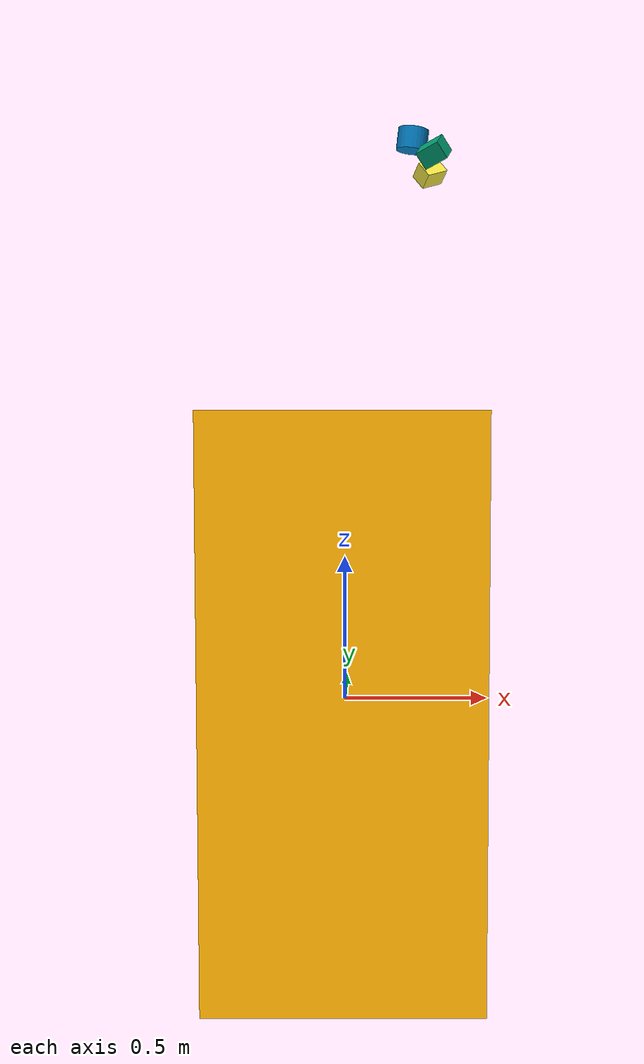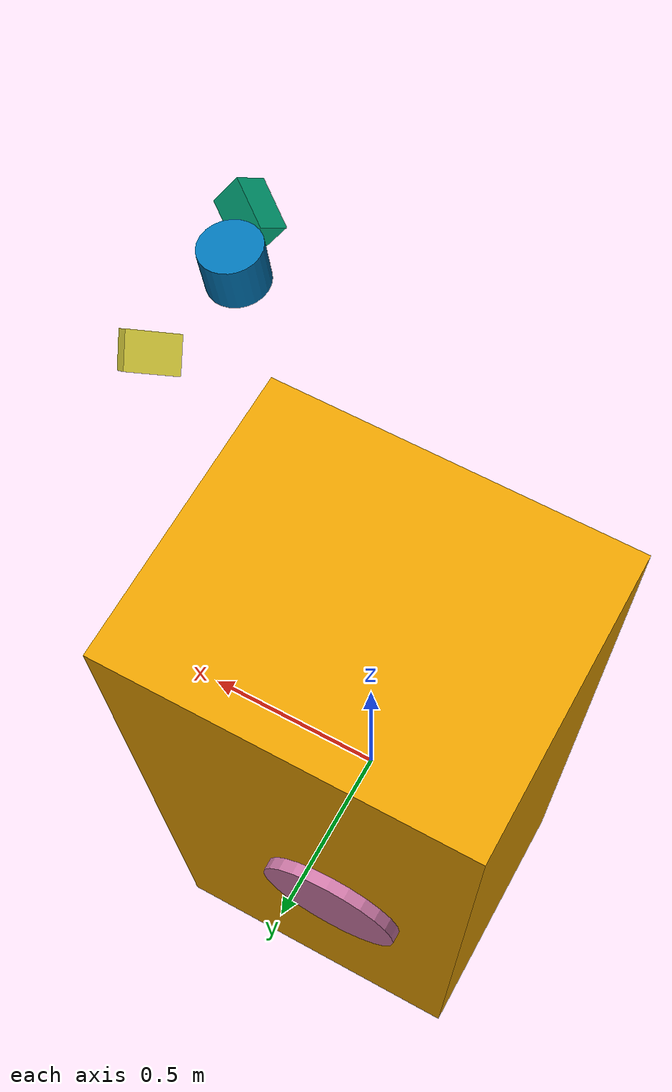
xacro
<?xml version = "1.0"?>
<robot xmlns:xacro="http://www.ros.org/wiki/xacro" name="anh_robot">
	<link name="base">
		<visual>
			<geometry>
				<box size="0.94 0.78 1.98"/>
			</geometry>
		</visual>
	</link>

	<link name="laser_vert_bottom">
		<visual>
			<origin xyz="0.3158 -0.0021 0.51" rpy="3.1355 -1.3045 0.0025"/>
			<geometry>
				<box size="0.062 0.062 0.087"/>
			</geometry>
		</visual>
	</link>

	<link name="laser_vert_top_right">
		<visual>
			<origin xyz="0.2978 -0.145 1.8451" rpy="-1.176 0.6313 -1.9377"/>
			<geometry>
				<box size="0.062 0.062 0.087"/>
			</geometry>
		</visual>
	</link>

	<link name="laser_vert_top_left">
		<visual>
			<origin xyz="0.2997 0.1531 1.8443" rpy="1.178 0.6198 1.956"/>
			<geometry>
				<box size="0.062 0.062 0.087"/>
			</geometry>
		</visual>
	</link>

	<link name="laser_horiz">
		<visual>
			<origin xyz="0.2325 0.0001 1.9201" rpy="-0.0012 0.1146 -0.0015"/>
			<geometry>
				<cylinder radius="0.052" length="0.072"/>
			</geometry>
		</visual>
	</link>

	<joint name="base_vert_bottom_joint" type="fixed">
		<parent link="base"/>
		<child link="laser_vert_bottom"/>
	</joint>

	<joint name="base_vert_top_right_joint" type="fixed">
		<parent link="base"/>
		<child link="laser_vert_top_right"/>
	</joint>

	<joint name="base_vert_top_left_joint" type="fixed">
		<parent link="base"/>
		<child link="laser_vert_top_left"/>
	</joint>

	<joint name="base_horiz_joint" type="fixed">
		<parent link="base"/>
		<child link="laser_horiz"/>
	</joint>

	<xacro:macro name="wheel_center_xacro" params ="suffix reflect">
		<link name="wheel_${suffix}">
			<visual>
				<origin xyz="-0.1 0 0" rpy="-1.57 0 0"/>
				<geometry>
					<cylinder radius="0.15" length="0.05"/>
				</geometry>
			</visual>
			<collision>
				<geometry>
					<cylinder radius="0.15" length="0.05"/>
				</geometry>
			</collision>
		</link>

		<joint name="base_wheel_${suffix}_joint" type="fixed">
			<parent link="base"/>
			<child link="wheel_${suffix}"/>
		</joint>
	</xacro:macro>
	<xacro:wheel_center_xacro suffix="center" reflect="1" />

	<xacro:macro name="wheel_xacro" params ="suffix reflect">
		<link name="wheel_${suffix}">
			<visual>
				<origin xyz="-0.1 0.4 0" rpy="-1.57 0 0"/>
				<geometry>
					<cylinder radius="0.2" length="0.05"/>
				</geometry>
			</visual>
			<collision>
				<geometry>
					<cylinder radius="0.2" length="0.05"/>
				</geometry>
			</collision>
		</link>

		<joint name="base_wheel_${suffix}_joint" type="fixed">
			<parent link="base"/>
			<child link="wheel_${suffix}"/>
		</joint>
	</xacro:macro>
	<xacro:wheel_xacro suffix="left" reflect="1" />
	<xacro:wheel_xacro suffix="right" reflect="1" />
</robot>
